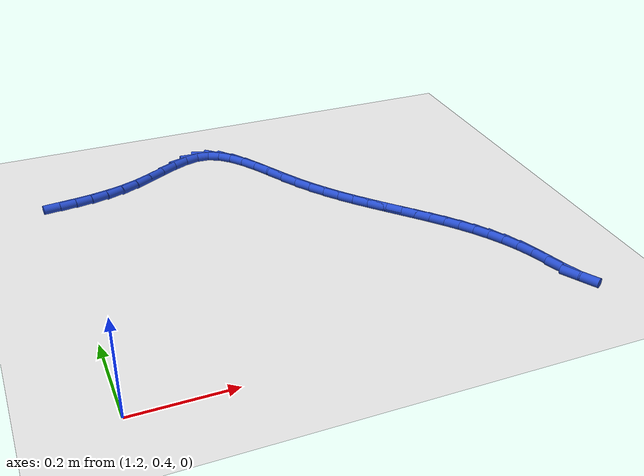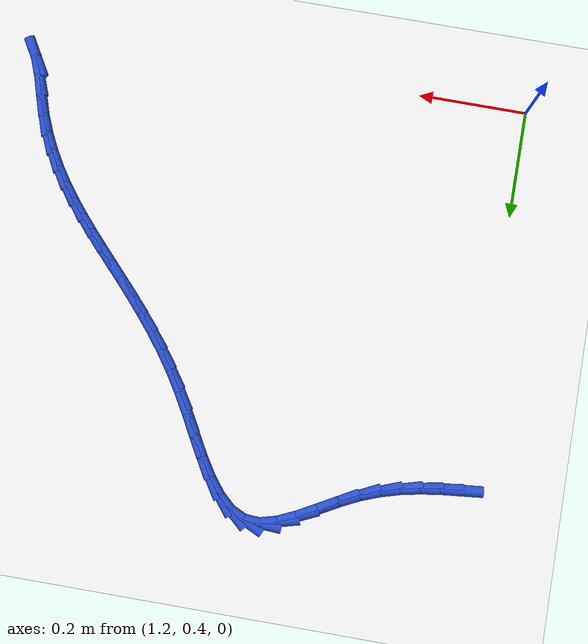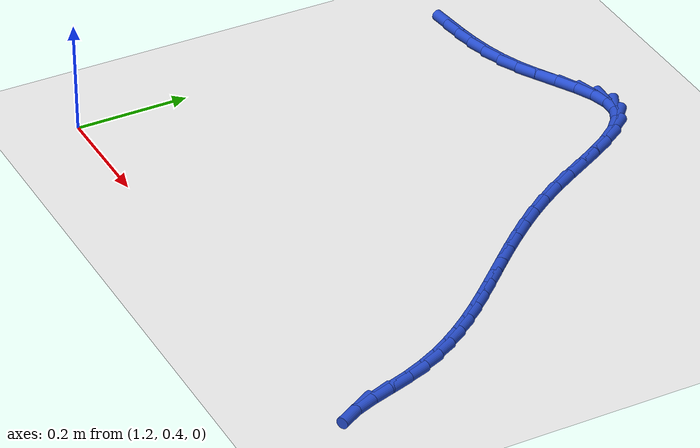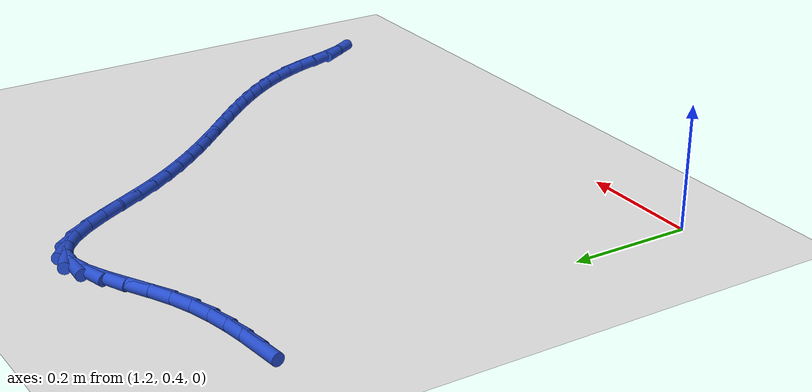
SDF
<sdf version="1.6">
 <world name="default">
  <model name="ground_plane">
   <static>1</static>
   <link name="link">
    <collision name="collision">
     <geometry><plane><normal>0 0 1</normal><size>100 100</size></plane></geometry>
     <surface><friction><ode><mu>100</mu><mu2>50</mu2></ode></friction></surface>
    </collision>
    <visual name="visual">
     <cast_shadows>0</cast_shadows>
     <geometry><plane><normal>0 0 1</normal><size>100 100</size></plane></geometry>
     <material>
      <script><uri>file://media/materials/scripts/gazebo.material</uri><name>Gazebo/WhiteGlow</name></script>
     </material>
    </visual>
   </link>
  </model>
  <model name="line">
   <link name="link_52">
    <pose>1.2153720775680694 1.104333355469699 0.01 0 1.57 0.10297167423270662</pose>
    <collision name="collision">
     <geometry><cylinder><radius>0.01</radius><length>0.08</length></cylinder></geometry>
    </collision>
    <visual name="visual">
     <material>
      <script><name>Gazebo/Blue</name><uri>file://media/materials/scripts/gazebo.material</uri></script>
     </material>
     <geometry><cylinder><radius>0.01</radius><length>0.08</length></cylinder></geometry>
    </visual>
   </link>
   <link name="link_53">
    <pose>1.2503341444724028 1.1079462363939747 0.01 0 1.57 0.14463154132239064</pose>
    <collision name="collision">
     <geometry><cylinder><radius>0.01</radius><length>0.08</length></cylinder></geometry>
    </collision>
    <visual name="visual">
     <material>
      <script><name>Gazebo/Blue</name><uri>file://media/materials/scripts/gazebo.material</uri></script>
     </material>
     <geometry><cylinder><radius>0.01</radius><length>0.08</length></cylinder></geometry>
    </visual>
   </link>
   <link name="link_54">
    <pose>1.2853017954090014 1.1130392234488942 0.01 0 1.57 0.20308235742694217</pose>
    <collision name="collision">
     <geometry><cylinder><radius>0.01</radius><length>0.08</length></cylinder></geometry>
    </collision>
    <visual name="visual">
     <material>
      <script><name>Gazebo/Blue</name><uri>file://media/materials/scripts/gazebo.material</uri></script>
     </material>
     <geometry><cylinder><radius>0.01</radius><length>0.08</length></cylinder></geometry>
    </visual>
   </link>
   <link name="link_55">
    <pose>1.3202907392033232 1.1202441841124158 0.01 0 1.57 0.2767519014179109</pose>
    <collision name="collision">
     <geometry><cylinder><radius>0.01</radius><length>0.08</length></cylinder></geometry>
    </collision>
    <visual name="visual">
     <material>
      <script><name>Gazebo/Blue</name><uri>file://media/materials/scripts/gazebo.material</uri></script>
     </material>
     <geometry><cylinder><radius>0.01</radius><length>0.08</length></cylinder></geometry>
    </visual>
   </link>
   <link name="link_56">
    <pose>1.355316684680824 1.1301929858624973 0.01 0 1.57 0.3630130115371787</pose>
    <collision name="collision">
     <geometry><cylinder><radius>0.01</radius><length>0.08</length></cylinder></geometry>
    </collision>
    <visual name="visual">
     <material>
      <script><name>Gazebo/Blue</name><uri>file://media/materials/scripts/gazebo.material</uri></script>
     </material>
     <geometry><cylinder><radius>0.01</radius><length>0.08</length></cylinder></geometry>
    </visual>
   </link>
   <link name="link_57">
    <pose>1.3903953406669616 1.143517496177096 0.01 0 1.57 0.45421878053178943</pose>
    <collision name="collision">
     <geometry><cylinder><radius>0.01</radius><length>0.08</length></cylinder></geometry>
    </collision>
    <visual name="visual">
     <material>
      <script><name>Gazebo/Blue</name><uri>file://media/materials/scripts/gazebo.material</uri></script>
     </material>
     <geometry><cylinder><radius>0.01</radius><length>0.08</length></cylinder></geometry>
    </visual>
   </link>
   <link name="link_58">
    <pose>1.425513417673205 1.1606645617772307 0.01 0 1.57 0.506772204871337</pose>
    <collision name="collision">
     <geometry><cylinder><radius>0.01</radius><length>0.08</length></cylinder></geometry>
    </collision>
    <visual name="visual">
     <material>
      <script><name>Gazebo/Blue</name><uri>file://media/materials/scripts/gazebo.material</uri></script>
     </material>
     <geometry><cylinder><radius>0.01</radius><length>0.08</length></cylinder></geometry>
    </visual>
   </link>
   <link name="link_59">
    <pose>1.4603302745162976 1.1799923955975342 0.01 0 1.57 0.4998025724112969</pose>
    <collision name="collision">
     <geometry><cylinder><radius>0.01</radius><length>0.08</length></cylinder></geometry>
    </collision>
    <visual name="visual">
     <material>
      <script><name>Gazebo/Blue</name><uri>file://media/materials/scripts/gazebo.material</uri></script>
     </material>
     <geometry><cylinder><radius>0.01</radius><length>0.08</length></cylinder></geometry>
    </visual>
   </link>
   <link name="link_60">
    <pose>1.4942986164098497 1.198540678533446 0.01 0 1.57 0.42620709518799016</pose>
    <collision name="collision">
     <geometry><cylinder><radius>0.01</radius><length>0.08</length></cylinder></geometry>
    </collision>
    <visual name="visual">
     <material>
      <script><name>Gazebo/Blue</name><uri>file://media/materials/scripts/gazebo.material</uri></script>
     </material>
     <geometry><cylinder><radius>0.01</radius><length>0.08</length></cylinder></geometry>
    </visual>
   </link>
   <link name="link_61">
    <pose>1.526867902729303 1.2133283817441345 0.01 0 1.57 0.2569657556382772</pose>
    <collision name="collision">
     <geometry><cylinder><radius>0.01</radius><length>0.08</length></cylinder></geometry>
    </collision>
    <visual name="visual">
     <material>
      <script><name>Gazebo/Blue</name><uri>file://media/materials/scripts/gazebo.material</uri></script>
     </material>
     <geometry><cylinder><radius>0.01</radius><length>0.08</length></cylinder></geometry>
    </visual>
   </link>
   <link name="link_62">
    <pose>1.5574875928500997 1.221374476388768 0.01 0 1.57 -0.05772509660578937</pose>
    <collision name="collision">
     <geometry><cylinder><radius>0.01</radius><length>0.08</length></cylinder></geometry>
    </collision>
    <visual name="visual">
     <material>
      <script><name>Gazebo/Blue</name><uri>file://media/materials/scripts/gazebo.material</uri></script>
     </material>
     <geometry><cylinder><radius>0.01</radius><length>0.08</length></cylinder></geometry>
    </visual>
   </link>
   <link name="link_63">
    <pose>1.58561835256482 1.2197488195012647 0.01 0 1.57 -0.44578839142600923</pose>
    <collision name="collision">
     <geometry><cylinder><radius>0.01</radius><length>0.08</length></cylinder></geometry>
    </collision>
    <visual name="visual">
     <material>
      <script><name>Gazebo/Blue</name><uri>file://media/materials/scripts/gazebo.material</uri></script>
     </material>
     <geometry><cylinder><radius>0.01</radius><length>0.08</length></cylinder></geometry>
    </visual>
   </link>
   <link name="link_64">
    <pose>1.6111655470808754 1.2075405503216563 0.01 0 1.57 -0.7315847116976266</pose>
    <collision name="collision">
     <geometry><cylinder><radius>0.01</radius><length>0.08</length></cylinder></geometry>
    </collision>
    <visual name="visual">
     <material>
      <script><name>Gazebo/Blue</name><uri>file://media/materials/scripts/gazebo.material</uri></script>
     </material>
     <geometry><cylinder><radius>0.01</radius><length>0.08</length></cylinder></geometry>
    </visual>
   </link>
   <link name="link_65">
    <pose>1.6346175126297373 1.1864859512530002 0.01 0 1.57 -0.90712623595277</pose>
    <collision name="collision">
     <geometry><cylinder><radius>0.01</radius><length>0.08</length></cylinder></geometry>
    </collision>
    <visual name="visual">
     <material>
      <script><name>Gazebo/Blue</name><uri>file://media/materials/scripts/gazebo.material</uri></script>
     </material>
     <geometry><cylinder><radius>0.01</radius><length>0.08</length></cylinder></geometry>
    </visual>
   </link>
   <link name="link_66">
    <pose>1.6565020831741193 1.158500655206174 0.01 0 1.57 -1.0074220827951799</pose>
    <collision name="collision">
     <geometry><cylinder><radius>0.01</radius><length>0.08</length></cylinder></geometry>
    </collision>
    <visual name="visual">
     <material>
      <script><name>Gazebo/Blue</name><uri>file://media/materials/scripts/gazebo.material</uri></script>
     </material>
     <geometry><cylinder><radius>0.01</radius><length>0.08</length></cylinder></geometry>
    </visual>
   </link>
   <link name="link_67">
    <pose>1.6773470926767335 1.125500295092055 0.01 0 1.57 -1.0578357391321325</pose>
    <collision name="collision">
     <geometry><cylinder><radius>0.01</radius><length>0.08</length></cylinder></geometry>
    </collision>
    <visual name="visual">
     <material>
      <script><name>Gazebo/Blue</name><uri>file://media/materials/scripts/gazebo.material</uri></script>
     </material>
     <geometry><cylinder><radius>0.01</radius><length>0.08</length></cylinder></geometry>
    </visual>
   </link>
   <link name="link_68">
    <pose>1.6976803751002927 1.0894005038215189 0.01 0 1.57 -1.0711832746636416</pose>
    <collision name="collision">
     <geometry><cylinder><radius>0.01</radius><length>0.08</length></cylinder></geometry>
    </collision>
    <visual name="visual">
     <material>
      <script><name>Gazebo/Blue</name><uri>file://media/materials/scripts/gazebo.material</uri></script>
     </material>
     <geometry><cylinder><radius>0.01</radius><length>0.08</length></cylinder></geometry>
    </visual>
   </link>
   <link name="link_69">
    <pose>1.718029764407509 1.0521169143054432 0.01 0 1.57 -1.0515163306645523</pose>
    <collision name="collision">
     <geometry><cylinder><radius>0.01</radius><length>0.08</length></cylinder></geometry>
    </collision>
    <visual name="visual">
     <material>
      <script><name>Gazebo/Blue</name><uri>file://media/materials/scripts/gazebo.material</uri></script>
     </material>
     <geometry><cylinder><radius>0.01</radius><length>0.08</length></cylinder></geometry>
    </visual>
   </link>
   <link name="link_70">
    <pose>1.7389230505974098 1.0155650245684458 0.01 0 1.57 -1.0050591435824352</pose>
    <collision name="collision">
     <geometry><cylinder><radius>0.01</radius><length>0.08</length></cylinder></geometry>
    </collision>
    <visual name="visual">
     <material>
      <script><name>Gazebo/Blue</name><uri>file://media/materials/scripts/gazebo.material</uri></script>
     </material>
     <geometry><cylinder><radius>0.01</radius><length>0.08</length></cylinder></geometry>
    </visual>
   </link>
   <link name="link_71">
    <pose>1.7607399707554683 0.9812060872059963 0.01 0 1.57 -0.957552552143876</pose>
    <collision name="collision">
     <geometry><cylinder><radius>0.01</radius><length>0.08</length></cylinder></geometry>
    </collision>
    <visual name="visual">
     <material>
      <script><name>Gazebo/Blue</name><uri>file://media/materials/scripts/gazebo.material</uri></script>
     </material>
     <geometry><cylinder><radius>0.01</radius><length>0.08</length></cylinder></geometry>
    </visual>
   </link>
   <link name="link_72">
    <pose>1.7833817943133627 0.9490333543567293 0.01 0 1.57 -0.915680178903412</pose>
    <collision name="collision">
     <geometry><cylinder><radius>0.01</radius><length>0.08</length></cylinder></geometry>
    </collision>
    <visual name="visual">
     <material>
      <script><name>Gazebo/Blue</name><uri>file://media/materials/scripts/gazebo.material</uri></script>
     </material>
     <geometry><cylinder><radius>0.01</radius><length>0.08</length></cylinder></geometry>
    </visual>
   </link>
   <link name="link_73">
    <pose>1.8066533141481878 0.9187440756498522 0.01 0 1.57 -0.8805521878444985</pose>
    <collision name="collision">
     <geometry><cylinder><radius>0.01</radius><length>0.08</length></cylinder></geometry>
    </collision>
    <visual name="visual">
     <material>
      <script><name>Gazebo/Blue</name><uri>file://media/materials/scripts/gazebo.material</uri></script>
     </material>
     <geometry><cylinder><radius>0.01</radius><length>0.08</length></cylinder></geometry>
    </visual>
   </link>
   <link name="link_74">
    <pose>1.8303593231370383 0.890035500714571 0.01 0 1.57 -0.8531341565264051</pose>
    <collision name="collision">
     <geometry><cylinder><radius>0.01</radius><length>0.08</length></cylinder></geometry>
    </collision>
    <visual name="visual">
     <material>
      <script><name>Gazebo/Blue</name><uri>file://media/materials/scripts/gazebo.material</uri></script>
     </material>
     <geometry><cylinder><radius>0.01</radius><length>0.08</length></cylinder></geometry>
    </visual>
   </link>
   <link name="link_75">
    <pose>1.8543046141570092 0.8626048791800941 0.01 0 1.57 -0.834245450800011</pose>
    <collision name="collision">
     <geometry><cylinder><radius>0.01</radius><length>0.08</length></cylinder></geometry>
    </collision>
    <visual name="visual">
     <material>
      <script><name>Gazebo/Blue</name><uri>file://media/materials/scripts/gazebo.material</uri></script>
     </material>
     <geometry><cylinder><radius>0.01</radius><length>0.08</length></cylinder></geometry>
    </visual>
   </link>
   <link name="link_76">
    <pose>1.8782939800851945 0.8361494606756272 0.01 0 1.57 -0.8245696743021435</pose>
    <collision name="collision">
     <geometry><cylinder><radius>0.01</radius><length>0.08</length></cylinder></geometry>
    </collision>
    <visual name="visual">
     <material>
      <script><name>Gazebo/Blue</name><uri>file://media/materials/scripts/gazebo.material</uri></script>
     </material>
     <geometry><cylinder><radius>0.01</radius><length>0.08</length></cylinder></geometry>
    </visual>
   </link>
   <link name="link_77">
    <pose>1.9021322137986894 0.810366494830378 0.01 0 1.57 -0.824665627592376</pose>
    <collision name="collision">
     <geometry><cylinder><radius>0.01</radius><length>0.08</length></cylinder></geometry>
    </collision>
    <visual name="visual">
     <material>
      <script><name>Gazebo/Blue</name><uri>file://media/materials/scripts/gazebo.material</uri></script>
     </material>
     <geometry><cylinder><radius>0.01</radius><length>0.08</length></cylinder></geometry>
    </visual>
   </link>
   <link name="link_78">
    <pose>1.9256241081745888 0.7849532312735531 0.01 0 1.57 -0.8349668310422012</pose>
    <collision name="collision">
     <geometry><cylinder><radius>0.01</radius><length>0.08</length></cylinder></geometry>
    </collision>
    <visual name="visual">
     <material>
      <script><name>Gazebo/Blue</name><uri>file://media/materials/scripts/gazebo.material</uri></script>
     </material>
     <geometry><cylinder><radius>0.01</radius><length>0.08</length></cylinder></geometry>
    </visual>
   </link>
   <link name="link_79">
    <pose>1.9485744560899874 0.75960691963436 0.01 0 1.57 -0.8557591959741188</pose>
    <collision name="collision">
     <geometry><cylinder><radius>0.01</radius><length>0.08</length></cylinder></geometry>
    </collision>
    <visual name="visual">
     <material>
      <script><name>Gazebo/Blue</name><uri>file://media/materials/scripts/gazebo.material</uri></script>
     </material>
     <geometry><cylinder><radius>0.01</radius><length>0.08</length></cylinder></geometry>
    </visual>
   </link>
   <link name="link_80">
    <pose>1.9707880504219792 0.734024809542005 0.01 0 1.57 -0.8871299552987736</pose>
    <collision name="collision">
     <geometry><cylinder><radius>0.01</radius><length>0.08</length></cylinder></geometry>
    </collision>
    <visual name="visual">
     <material>
      <script><name>Gazebo/Blue</name><uri>file://media/materials/scripts/gazebo.material</uri></script>
     </material>
     <geometry><cylinder><radius>0.01</radius><length>0.08</length></cylinder></geometry>
    </visual>
   </link>
   <link name="link_81">
    <pose>1.9920696840476593 0.7079041506256956 0.01 0 1.57 -0.9288875711741507</pose>
    <collision name="collision">
     <geometry><cylinder><radius>0.01</radius><length>0.08</length></cylinder></geometry>
    </collision>
    <visual name="visual">
     <material>
      <script><name>Gazebo/Blue</name><uri>file://media/materials/scripts/gazebo.material</uri></script>
     </material>
     <geometry><cylinder><radius>0.01</radius><length>0.08</length></cylinder></geometry>
    </visual>
   </link>
   <link name="link_82">
    <pose>2.012224149844122 0.6809421925146384 0.01 0 1.57 -0.9804634106747375</pose>
    <collision name="collision">
     <geometry><cylinder><radius>0.01</radius><length>0.08</length></cylinder></geometry>
    </collision>
    <visual name="visual">
     <material>
      <script><name>Gazebo/Blue</name><uri>file://media/materials/scripts/gazebo.material</uri></script>
     </material>
     <geometry><cylinder><radius>0.01</radius><length>0.08</length></cylinder></geometry>
    </visual>
   </link>
   <link name="link_83">
    <pose>2.031056240688463 0.6528361848380404 0.01 0 1.57 -1.0408211136673151</pose>
    <collision name="collision">
     <geometry><cylinder><radius>0.01</radius><length>0.08</length></cylinder></geometry>
    </collision>
    <visual name="visual">
     <material>
      <script><name>Gazebo/Blue</name><uri>file://media/materials/scripts/gazebo.material</uri></script>
     </material>
     <geometry><cylinder><radius>0.01</radius><length>0.08</length></cylinder></geometry>
    </visual>
   </link>
   <link name="link_84">
    <pose>2.048370749457776 0.6232833772251092 0.01 0 1.57 -1.1084135590315929</pose>
    <collision name="collision">
     <geometry><cylinder><radius>0.01</radius><length>0.08</length></cylinder></geometry>
    </collision>
    <visual name="visual">
     <material>
      <script><name>Gazebo/Blue</name><uri>file://media/materials/scripts/gazebo.material</uri></script>
     </material>
     <geometry><cylinder><radius>0.01</radius><length>0.08</length></cylinder></geometry>
    </visual>
   </link>
   <link name="link_85">
    <pose>2.0639724690291565 0.5919810193050509 0.01 0 1.57 -1.1812291533747508</pose>
    <collision name="collision">
     <geometry><cylinder><radius>0.01</radius><length>0.08</length></cylinder></geometry>
    </collision>
    <visual name="visual">
     <material>
      <script><name>Gazebo/Blue</name><uri>file://media/materials/scripts/gazebo.material</uri></script>
     </material>
     <geometry><cylinder><radius>0.01</radius><length>0.08</length></cylinder></geometry>
    </visual>
   </link>
   <link name="link_86">
    <pose>2.0776661922796986 0.558626360707073 0.01 0 1.57 -1.2527177371258107</pose>
    <collision name="collision">
     <geometry><cylinder><radius>0.01</radius><length>0.08</length></cylinder></geometry>
    </collision>
    <visual name="visual">
     <material>
      <script><name>Gazebo/Blue</name><uri>file://media/materials/scripts/gazebo.material</uri></script>
     </material>
     <geometry><cylinder><radius>0.01</radius><length>0.08</length></cylinder></geometry>
    </visual>
   </link>
   <link name="link_87">
    <pose>2.0893780192867184 0.5230560333537888 0.01 0 1.57 -1.2729560645764586</pose>
    <collision name="collision">
     <geometry><cylinder><radius>0.01</radius><length>0.08</length></cylinder></geometry>
    </collision>
    <visual name="visual">
     <material>
      <script><name>Gazebo/Blue</name><uri>file://media/materials/scripts/gazebo.material</uri></script>
     </material>
     <geometry><cylinder><radius>0.01</radius><length>0.08</length></cylinder></geometry>
    </visual>
   </link>
   <link name="link_88">
    <pose>2.100507638792732 0.48679982643563313 0.01 0 1.57 -1.2101813102977534</pose>
    <collision name="collision">
     <geometry><cylinder><radius>0.01</radius><length>0.08</length></cylinder></geometry>
    </collision>
    <visual name="visual">
     <material>
      <script><name>Gazebo/Blue</name><uri>file://media/materials/scripts/gazebo.material</uri></script>
     </material>
     <geometry><cylinder><radius>0.01</radius><length>0.08</length></cylinder></geometry>
    </visual>
   </link>
   <link name="link_89">
    <pose>2.113436435325002 0.4525155001922085 0.01 0 1.57 -1.046746015834272</pose>
    <collision name="collision">
     <geometry><cylinder><radius>0.01</radius><length>0.08</length></cylinder></geometry>
    </collision>
    <visual name="visual">
     <material>
      <script><name>Gazebo/Blue</name><uri>file://media/materials/scripts/gazebo.material</uri></script>
     </material>
     <geometry><cylinder><radius>0.01</radius><length>0.08</length></cylinder></geometry>
    </visual>
   </link>
  </model>
 </world>
</sdf>
